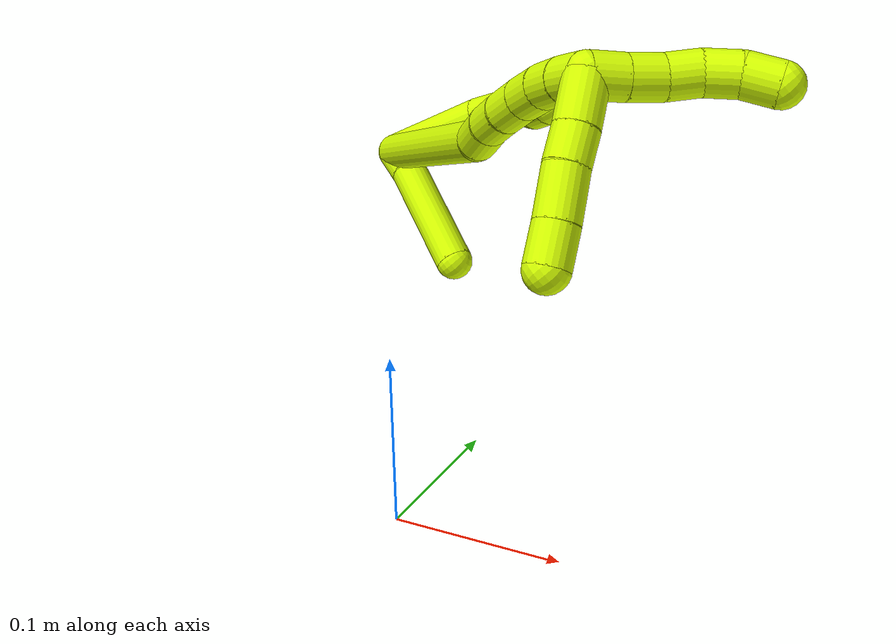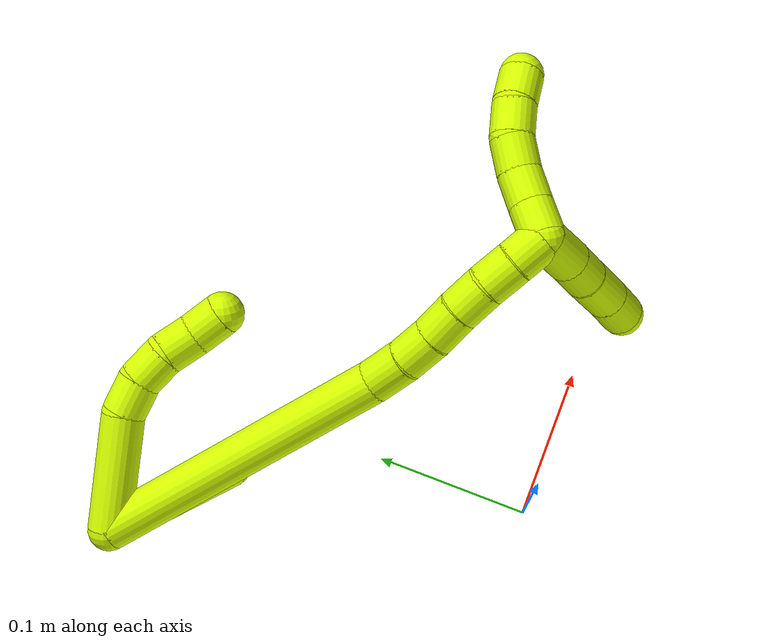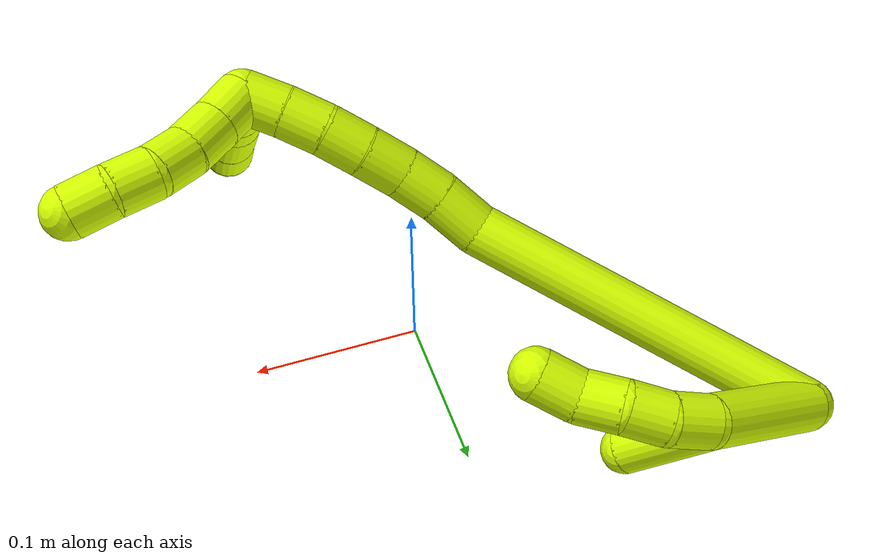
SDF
<sdf version="1.7">
 <world name="default">
  <model name="15">
   <static>0</static>
   <link name="15">
    <collision name="collision-cylinder-e_1_2_8">
     <pose>0.00991 0.004279 0.0323 -0.131706 0.295274 -0.019615</pose>
     <geometry><cylinder><radius>0.0125</radius><length>0.068112</length></cylinder></geometry>
     <surface>
      <friction><ode><mu>1.16</mu><mu2>1.16</mu2><slip1>0</slip1><slip2>0</slip2></ode></friction>
      <contact><ode><kp>1e+06</kp><kd>1</kd><max_vel>0</max_vel><min_depth>0.001</min_depth></ode></contact>
     </surface>
    </collision>
    <visual name="visual-cylinder-e_1_2_8">
     <pose>0.00991 0.004279 0.0323 -0.131706 0.295274 -0.019615</pose>
     <geometry><cylinder><radius>0.0125</radius><length>0.068112</length></cylinder></geometry>
     <material><ambient>0.835294 1 0 1</ambient></material>
    </visual>
    <collision name="collision-cylinder-e_2_8_9">
     <pose>0.025783 0.008605 0.073258 -0.005504 0.603078 -0.001712</pose>
     <geometry><cylinder><radius>0.0125</radius><length>0.021024</length></cylinder></geometry>
     <surface>
      <friction><ode><mu>1.16</mu><mu2>1.16</mu2><slip1>0</slip1><slip2>0</slip2></ode></friction>
      <contact><ode><kp>1e+06</kp><kd>1</kd><max_vel>0</max_vel><min_depth>0.001</min_depth></ode></contact>
     </surface>
    </collision>
    <visual name="visual-cylinder-e_2_8_9">
     <pose>0.025783 0.008605 0.073258 -0.005504 0.603078 -0.001712</pose>
     <geometry><cylinder><radius>0.0125</radius><length>0.021024</length></cylinder></geometry>
     <material><ambient>0.835294 1 0 1</ambient></material>
    </visual>
    <collision name="collision-cylinder-e_3_9_10">
     <pose>0.039272 0.006962 0.0885 0.251422 0.836184 0.112178</pose>
     <geometry><cylinder><radius>0.0125</radius><length>0.020287</length></cylinder></geometry>
     <surface>
      <friction><ode><mu>1.16</mu><mu2>1.16</mu2><slip1>0</slip1><slip2>0</slip2></ode></friction>
      <contact><ode><kp>1e+06</kp><kd>1</kd><max_vel>0</max_vel><min_depth>0.001</min_depth></ode></contact>
     </surface>
    </collision>
    <visual name="visual-cylinder-e_3_9_10">
     <pose>0.039272 0.006962 0.0885 0.251422 0.836184 0.112178</pose>
     <geometry><cylinder><radius>0.0125</radius><length>0.020287</length></cylinder></geometry>
     <material><ambient>0.835294 1 0 1</ambient></material>
    </visual>
    <collision name="collision-cylinder-e_4_10_11">
     <pose>0.055997 0.004238 0.099167 0.247602 1.14156 0.159456</pose>
     <geometry><cylinder><radius>0.0125</radius><length>0.020229</length></cylinder></geometry>
     <surface>
      <friction><ode><mu>1.16</mu><mu2>1.16</mu2><slip1>0</slip1><slip2>0</slip2></ode></friction>
      <contact><ode><kp>1e+06</kp><kd>1</kd><max_vel>0</max_vel><min_depth>0.001</min_depth></ode></contact>
     </surface>
    </collision>
    <visual name="visual-cylinder-e_4_10_11">
     <pose>0.055997 0.004238 0.099167 0.247602 1.14156 0.159456</pose>
     <geometry><cylinder><radius>0.0125</radius><length>0.020229</length></cylinder></geometry>
     <material><ambient>0.835294 1 0 1</ambient></material>
    </visual>
    <collision name="collision-cylinder-e_5_11_6">
     <pose>0.072797 -0.000391 0.108972 0.56112 0.84401 0.257327</pose>
     <geometry><cylinder><radius>0.0125</radius><length>0.020348</length></cylinder></geometry>
     <surface>
      <friction><ode><mu>1.16</mu><mu2>1.16</mu2><slip1>0</slip1><slip2>0</slip2></ode></friction>
      <contact><ode><kp>1e+06</kp><kd>1</kd><max_vel>0</max_vel><min_depth>0.001</min_depth></ode></contact>
     </surface>
    </collision>
    <visual name="visual-cylinder-e_5_11_6">
     <pose>0.072797 -0.000391 0.108972 0.56112 0.84401 0.257327</pose>
     <geometry><cylinder><radius>0.0125</radius><length>0.020348</length></cylinder></geometry>
     <material><ambient>0.835294 1 0 1</ambient></material>
    </visual>
    <collision name="collision-cylinder-e_1_2_12">
     <pose>0.010538 0.003083 0.000724 -1.34019 1.27884 -1.06498</pose>
     <geometry><cylinder><radius>0.0125</radius><length>0.022007</length></cylinder></geometry>
     <surface>
      <friction><ode><mu>1.16</mu><mu2>1.16</mu2><slip1>0</slip1><slip2>0</slip2></ode></friction>
      <contact><ode><kp>1e+06</kp><kd>1</kd><max_vel>0</max_vel><min_depth>0.001</min_depth></ode></contact>
     </surface>
    </collision>
    <visual name="visual-cylinder-e_1_2_12">
     <pose>0.010538 0.003083 0.000724 -1.34019 1.27884 -1.06498</pose>
     <geometry><cylinder><radius>0.0125</radius><length>0.022007</length></cylinder></geometry>
     <material><ambient>0.835294 1 0 1</ambient></material>
    </visual>
    <collision name="collision-cylinder-e_2_12_5">
     <pose>0.056608 0.021851 -0.002045 -1.78992 1.14607 -1.35529</pose>
     <geometry><cylinder><radius>0.0125</radius><length>0.077993</length></cylinder></geometry>
     <surface>
      <friction><ode><mu>1.16</mu><mu2>1.16</mu2><slip1>0</slip1><slip2>0</slip2></ode></friction>
      <contact><ode><kp>1e+06</kp><kd>1</kd><max_vel>0</max_vel><min_depth>0.001</min_depth></ode></contact>
     </surface>
    </collision>
    <visual name="visual-cylinder-e_2_12_5">
     <pose>0.056608 0.021851 -0.002045 -1.78992 1.14607 -1.35529</pose>
     <geometry><cylinder><radius>0.0125</radius><length>0.077993</length></cylinder></geometry>
     <material><ambient>0.835294 1 0 1</ambient></material>
    </visual>
    <collision name="collision-cylinder-e_1_2_13">
     <pose>0.07071 -0.031761 0.039495 0.67729 0.948915 0.357913</pose>
     <geometry><cylinder><radius>0.0125</radius><length>0.173995</length></cylinder></geometry>
     <surface>
      <friction><ode><mu>1.16</mu><mu2>1.16</mu2><slip1>0</slip1><slip2>0</slip2></ode></friction>
      <contact><ode><kp>1e+06</kp><kd>1</kd><max_vel>0</max_vel><min_depth>0.001</min_depth></ode></contact>
     </surface>
    </collision>
    <visual name="visual-cylinder-e_1_2_13">
     <pose>0.07071 -0.031761 0.039495 0.67729 0.948915 0.357913</pose>
     <geometry><cylinder><radius>0.0125</radius><length>0.173995</length></cylinder></geometry>
     <material><ambient>0.835294 1 0 1</ambient></material>
    </visual>
    <collision name="collision-cylinder-e_2_13_14">
     <pose>0.148509 -0.070007 0.086288 0.726372 0.628061 0.245617</pose>
     <geometry><cylinder><radius>0.0125</radius><length>0.024129</length></cylinder></geometry>
     <surface>
      <friction><ode><mu>1.16</mu><mu2>1.16</mu2><slip1>0</slip1><slip2>0</slip2></ode></friction>
      <contact><ode><kp>1e+06</kp><kd>1</kd><max_vel>0</max_vel><min_depth>0.001</min_depth></ode></contact>
     </surface>
    </collision>
    <visual name="visual-cylinder-e_2_13_14">
     <pose>0.148509 -0.070007 0.086288 0.726372 0.628061 0.245617</pose>
     <geometry><cylinder><radius>0.0125</radius><length>0.024129</length></cylinder></geometry>
     <material><ambient>0.835294 1 0 1</ambient></material>
    </visual>
    <collision name="collision-cylinder-e_3_14_15">
     <pose>0.162021 -0.081032 0.10049 0.581903 0.660761 0.204675</pose>
     <geometry><cylinder><radius>0.0125</radius><length>0.020932</length></cylinder></geometry>
     <surface>
      <friction><ode><mu>1.16</mu><mu2>1.16</mu2><slip1>0</slip1><slip2>0</slip2></ode></friction>
      <contact><ode><kp>1e+06</kp><kd>1</kd><max_vel>0</max_vel><min_depth>0.001</min_depth></ode></contact>
     </surface>
    </collision>
    <visual name="visual-cylinder-e_3_14_15">
     <pose>0.162021 -0.081032 0.10049 0.581903 0.660761 0.204675</pose>
     <geometry><cylinder><radius>0.0125</radius><length>0.020932</length></cylinder></geometry>
     <material><ambient>0.835294 1 0 1</ambient></material>
    </visual>
    <collision name="collision-cylinder-e_4_15_16">
     <pose>0.174543 -0.089379 0.114911 0.468614 0.626454 0.154312</pose>
     <geometry><cylinder><radius>0.0125</radius><length>0.020802</length></cylinder></geometry>
     <surface>
      <friction><ode><mu>1.16</mu><mu2>1.16</mu2><slip1>0</slip1><slip2>0</slip2></ode></friction>
      <contact><ode><kp>1e+06</kp><kd>1</kd><max_vel>0</max_vel><min_depth>0.001</min_depth></ode></contact>
     </surface>
    </collision>
    <visual name="visual-cylinder-e_4_15_16">
     <pose>0.174543 -0.089379 0.114911 0.468614 0.626454 0.154312</pose>
     <geometry><cylinder><radius>0.0125</radius><length>0.020802</length></cylinder></geometry>
     <material><ambient>0.835294 1 0 1</ambient></material>
    </visual>
    <collision name="collision-cylinder-e_5_16_17">
     <pose>0.187144 -0.096774 0.129198 0.487518 0.703784 0.18213</pose>
     <geometry><cylinder><radius>0.0125</radius><length>0.0201</length></cylinder></geometry>
     <surface>
      <friction><ode><mu>1.16</mu><mu2>1.16</mu2><slip1>0</slip1><slip2>0</slip2></ode></friction>
      <contact><ode><kp>1e+06</kp><kd>1</kd><max_vel>0</max_vel><min_depth>0.001</min_depth></ode></contact>
     </surface>
    </collision>
    <visual name="visual-cylinder-e_5_16_17">
     <pose>0.187144 -0.096774 0.129198 0.487518 0.703784 0.18213</pose>
     <geometry><cylinder><radius>0.0125</radius><length>0.0201</length></cylinder></geometry>
     <material><ambient>0.835294 1 0 1</ambient></material>
    </visual>
    <collision name="collision-cylinder-e_6_17_18">
     <pose>0.201079 -0.10333 0.14197 0.459007 0.837502 0.207212</pose>
     <geometry><cylinder><radius>0.0125</radius><length>0.020007</length></cylinder></geometry>
     <surface>
      <friction><ode><mu>1.16</mu><mu2>1.16</mu2><slip1>0</slip1><slip2>0</slip2></ode></friction>
      <contact><ode><kp>1e+06</kp><kd>1</kd><max_vel>0</max_vel><min_depth>0.001</min_depth></ode></contact>
     </surface>
    </collision>
    <visual name="visual-cylinder-e_6_17_18">
     <pose>0.201079 -0.10333 0.14197 0.459007 0.837502 0.207212</pose>
     <geometry><cylinder><radius>0.0125</radius><length>0.020007</length></cylinder></geometry>
     <material><ambient>0.835294 1 0 1</ambient></material>
    </visual>
    <collision name="collision-cylinder-e_7_18_1">
     <pose>0.216315 -0.108663 0.153791 0.386308 0.893028 0.186741</pose>
     <geometry><cylinder><radius>0.0125</radius><length>0.020035</length></cylinder></geometry>
     <surface>
      <friction><ode><mu>1.16</mu><mu2>1.16</mu2><slip1>0</slip1><slip2>0</slip2></ode></friction>
      <contact><ode><kp>1e+06</kp><kd>1</kd><max_vel>0</max_vel><min_depth>0.001</min_depth></ode></contact>
     </surface>
    </collision>
    <visual name="visual-cylinder-e_7_18_1">
     <pose>0.216315 -0.108663 0.153791 0.386308 0.893028 0.186741</pose>
     <geometry><cylinder><radius>0.0125</radius><length>0.020035</length></cylinder></geometry>
     <material><ambient>0.835294 1 0 1</ambient></material>
    </visual>
    <collision name="collision-cylinder-e_1_1_19">
     <pose>0.225251 -0.103676 0.16629 -0.833268 0.113531 -0.050286</pose>
     <geometry><cylinder><radius>0.0125</radius><length>0.02</length></cylinder></geometry>
     <surface>
      <friction><ode><mu>1.16</mu><mu2>1.16</mu2><slip1>0</slip1><slip2>0</slip2></ode></friction>
      <contact><ode><kp>1e+06</kp><kd>1</kd><max_vel>0</max_vel><min_depth>0.001</min_depth></ode></contact>
     </surface>
    </collision>
    <visual name="visual-cylinder-e_1_1_19">
     <pose>0.225251 -0.103676 0.16629 -0.833268 0.113531 -0.050286</pose>
     <geometry><cylinder><radius>0.0125</radius><length>0.02</length></cylinder></geometry>
     <material><ambient>0.835294 1 0 1</ambient></material>
    </visual>
    <collision name="collision-cylinder-e_2_19_20">
     <pose>0.227372 -0.089389 0.18011 -0.770756 0.099017 -0.040195</pose>
     <geometry><cylinder><radius>0.0125</radius><length>0.02</length></cylinder></geometry>
     <surface>
      <friction><ode><mu>1.16</mu><mu2>1.16</mu2><slip1>0</slip1><slip2>0</slip2></ode></friction>
      <contact><ode><kp>1e+06</kp><kd>1</kd><max_vel>0</max_vel><min_depth>0.001</min_depth></ode></contact>
     </surface>
    </collision>
    <visual name="visual-cylinder-e_2_19_20">
     <pose>0.227372 -0.089389 0.18011 -0.770756 0.099017 -0.040195</pose>
     <geometry><cylinder><radius>0.0125</radius><length>0.02</length></cylinder></geometry>
     <material><ambient>0.835294 1 0 1</ambient></material>
    </visual>
    <collision name="collision-cylinder-e_3_20_21">
     <pose>0.229784 -0.076788 0.195363 -0.609819 0.142782 -0.045006</pose>
     <geometry><cylinder><radius>0.0125</radius><length>0.02</length></cylinder></geometry>
     <surface>
      <friction><ode><mu>1.16</mu><mu2>1.16</mu2><slip1>0</slip1><slip2>0</slip2></ode></friction>
      <contact><ode><kp>1e+06</kp><kd>1</kd><max_vel>0</max_vel><min_depth>0.001</min_depth></ode></contact>
     </surface>
    </collision>
    <visual name="visual-cylinder-e_3_20_21">
     <pose>0.229784 -0.076788 0.195363 -0.609819 0.142782 -0.045006</pose>
     <geometry><cylinder><radius>0.0125</radius><length>0.02</length></cylinder></geometry>
     <material><ambient>0.835294 1 0 1</ambient></material>
    </visual>
    <collision name="collision-cylinder-e_4_21_22">
     <pose>0.235568 -0.066018 0.210891 -0.602704 0.451279 -0.142454</pose>
     <geometry><cylinder><radius>0.0125</radius><length>0.02</length></cylinder></geometry>
     <surface>
      <friction><ode><mu>1.16</mu><mu2>1.16</mu2><slip1>0</slip1><slip2>0</slip2></ode></friction>
      <contact><ode><kp>1e+06</kp><kd>1</kd><max_vel>0</max_vel><min_depth>0.001</min_depth></ode></contact>
     </surface>
    </collision>
    <visual name="visual-cylinder-e_4_21_22">
     <pose>0.235568 -0.066018 0.210891 -0.602704 0.451279 -0.142454</pose>
     <geometry><cylinder><radius>0.0125</radius><length>0.02</length></cylinder></geometry>
     <material><ambient>0.835294 1 0 1</ambient></material>
    </visual>
    <collision name="collision-cylinder-e_5_22_4">
     <pose>0.245918 -0.055418 0.224127 -0.756729 0.642043 -0.262844</pose>
     <geometry><cylinder><radius>0.0125</radius><length>0.02</length></cylinder></geometry>
     <surface>
      <friction><ode><mu>1.16</mu><mu2>1.16</mu2><slip1>0</slip1><slip2>0</slip2></ode></friction>
      <contact><ode><kp>1e+06</kp><kd>1</kd><max_vel>0</max_vel><min_depth>0.001</min_depth></ode></contact>
     </surface>
    </collision>
    <visual name="visual-cylinder-e_5_22_4">
     <pose>0.245918 -0.055418 0.224127 -0.756729 0.642043 -0.262844</pose>
     <geometry><cylinder><radius>0.0125</radius><length>0.02</length></cylinder></geometry>
     <material><ambient>0.835294 1 0 1</ambient></material>
    </visual>
    <collision name="collision-cylinder-e_1_1_23">
     <pose>0.234005 -0.108086 0.149956 -2.84564 0.775147 -2.44136</pose>
     <geometry><cylinder><radius>0.0125</radius><length>0.028256</length></cylinder></geometry>
     <surface>
      <friction><ode><mu>1.16</mu><mu2>1.16</mu2><slip1>0</slip1><slip2>0</slip2></ode></friction>
      <contact><ode><kp>1e+06</kp><kd>1</kd><max_vel>0</max_vel><min_depth>0.001</min_depth></ode></contact>
     </surface>
    </collision>
    <visual name="visual-cylinder-e_1_1_23">
     <pose>0.234005 -0.108086 0.149956 -2.84564 0.775147 -2.44136</pose>
     <geometry><cylinder><radius>0.0125</radius><length>0.028256</length></cylinder></geometry>
     <material><ambient>0.835294 1 0 1</ambient></material>
    </visual>
    <collision name="collision-cylinder-e_2_23_24">
     <pose>0.250653 -0.103327 0.133028 -2.89698 0.733743 -2.5224</pose>
     <geometry><cylinder><radius>0.0125</radius><length>0.020192</length></cylinder></geometry>
     <surface>
      <friction><ode><mu>1.16</mu><mu2>1.16</mu2><slip1>0</slip1><slip2>0</slip2></ode></friction>
      <contact><ode><kp>1e+06</kp><kd>1</kd><max_vel>0</max_vel><min_depth>0.001</min_depth></ode></contact>
     </surface>
    </collision>
    <visual name="visual-cylinder-e_2_23_24">
     <pose>0.250653 -0.103327 0.133028 -2.89698 0.733743 -2.5224</pose>
     <geometry><cylinder><radius>0.0125</radius><length>0.020192</length></cylinder></geometry>
     <material><ambient>0.835294 1 0 1</ambient></material>
    </visual>
    <collision name="collision-cylinder-e_3_24_25">
     <pose>0.267257 -0.097794 0.115927 -2.77994 0.752826 -2.27512</pose>
     <geometry><cylinder><radius>0.0125</radius><length>0.028792</length></cylinder></geometry>
     <surface>
      <friction><ode><mu>1.16</mu><mu2>1.16</mu2><slip1>0</slip1><slip2>0</slip2></ode></friction>
      <contact><ode><kp>1e+06</kp><kd>1</kd><max_vel>0</max_vel><min_depth>0.001</min_depth></ode></contact>
     </surface>
    </collision>
    <visual name="visual-cylinder-e_3_24_25">
     <pose>0.267257 -0.097794 0.115927 -2.77994 0.752826 -2.27512</pose>
     <geometry><cylinder><radius>0.0125</radius><length>0.028792</length></cylinder></geometry>
     <material><ambient>0.835294 1 0 1</ambient></material>
    </visual>
    <collision name="collision-cylinder-e_4_25_3">
     <pose>0.284598 -0.091322 0.097997 -2.81395 0.719455 -2.31337</pose>
     <geometry><cylinder><radius>0.0125</radius><length>0.02276</length></cylinder></geometry>
     <surface>
      <friction><ode><mu>1.16</mu><mu2>1.16</mu2><slip1>0</slip1><slip2>0</slip2></ode></friction>
      <contact><ode><kp>1e+06</kp><kd>1</kd><max_vel>0</max_vel><min_depth>0.001</min_depth></ode></contact>
     </surface>
    </collision>
    <visual name="visual-cylinder-e_4_25_3">
     <pose>0.284598 -0.091322 0.097997 -2.81395 0.719455 -2.31337</pose>
     <geometry><cylinder><radius>0.0125</radius><length>0.02276</length></cylinder></geometry>
     <material><ambient>0.835294 1 0 1</ambient></material>
    </visual>
    <collision name="collision-sphere-3">
     <pose>0.292097 -0.088568 0.089892 0 -0 0</pose>
     <geometry><sphere><radius>0.0125</radius></sphere></geometry>
     <surface>
      <friction><ode><mu>1.16</mu><mu2>1.16</mu2><slip1>0</slip1><slip2>0</slip2></ode></friction>
      <contact><ode><kp>1e+06</kp><kd>1</kd><max_vel>0</max_vel><min_depth>0.001</min_depth></ode></contact>
     </surface>
    </collision>
    <visual name="visual-sphere-3">
     <pose>0.292097 -0.088568 0.089892 0 -0 0</pose>
     <geometry><sphere><radius>0.0125</radius></sphere></geometry>
     <material><ambient>0.835294 1 0 1</ambient></material>
    </visual>
    <collision name="collision-sphere-25">
     <pose>0.277099 -0.094077 0.106101 0 -0 0</pose>
     <geometry><sphere><radius>0.0125</radius></sphere></geometry>
     <surface>
      <friction><ode><mu>1.16</mu><mu2>1.16</mu2><slip1>0</slip1><slip2>0</slip2></ode></friction>
      <contact><ode><kp>1e+06</kp><kd>1</kd><max_vel>0</max_vel><min_depth>0.001</min_depth></ode></contact>
     </surface>
    </collision>
    <visual name="visual-sphere-25">
     <pose>0.277099 -0.094077 0.106101 0 -0 0</pose>
     <geometry><sphere><radius>0.0125</radius></sphere></geometry>
     <material><ambient>0.835294 1 0 1</ambient></material>
    </visual>
    <collision name="collision-sphere-24">
     <pose>0.257414 -0.101511 0.125753 0 -0 0</pose>
     <geometry><sphere><radius>0.0125</radius></sphere></geometry>
     <surface>
      <friction><ode><mu>1.16</mu><mu2>1.16</mu2><slip1>0</slip1><slip2>0</slip2></ode></friction>
      <contact><ode><kp>1e+06</kp><kd>1</kd><max_vel>0</max_vel><min_depth>0.001</min_depth></ode></contact>
     </surface>
    </collision>
    <visual name="visual-sphere-24">
     <pose>0.257414 -0.101511 0.125753 0 -0 0</pose>
     <geometry><sphere><radius>0.0125</radius></sphere></geometry>
     <material><ambient>0.835294 1 0 1</ambient></material>
    </visual>
    <collision name="collision-sphere-23">
     <pose>0.243892 -0.105143 0.140303 0 -0 0</pose>
     <geometry><sphere><radius>0.0125</radius></sphere></geometry>
     <surface>
      <friction><ode><mu>1.16</mu><mu2>1.16</mu2><slip1>0</slip1><slip2>0</slip2></ode></friction>
      <contact><ode><kp>1e+06</kp><kd>1</kd><max_vel>0</max_vel><min_depth>0.001</min_depth></ode></contact>
     </surface>
    </collision>
    <visual name="visual-sphere-23">
     <pose>0.243892 -0.105143 0.140303 0 -0 0</pose>
     <geometry><sphere><radius>0.0125</radius></sphere></geometry>
     <material><ambient>0.835294 1 0 1</ambient></material>
    </visual>
    <collision name="collision-sphere-4">
     <pose>0.251906 -0.04992 0.22995 0 -0 0</pose>
     <geometry><sphere><radius>0.0125</radius></sphere></geometry>
     <surface>
      <friction><ode><mu>1.16</mu><mu2>1.16</mu2><slip1>0</slip1><slip2>0</slip2></ode></friction>
      <contact><ode><kp>1e+06</kp><kd>1</kd><max_vel>0</max_vel><min_depth>0.001</min_depth></ode></contact>
     </surface>
    </collision>
    <visual name="visual-sphere-4">
     <pose>0.251906 -0.04992 0.22995 0 -0 0</pose>
     <geometry><sphere><radius>0.0125</radius></sphere></geometry>
     <material><ambient>0.835294 1 0 1</ambient></material>
    </visual>
    <collision name="collision-sphere-22">
     <pose>0.239929 -0.060916 0.218304 0 -0 0</pose>
     <geometry><sphere><radius>0.0125</radius></sphere></geometry>
     <surface>
      <friction><ode><mu>1.16</mu><mu2>1.16</mu2><slip1>0</slip1><slip2>0</slip2></ode></friction>
      <contact><ode><kp>1e+06</kp><kd>1</kd><max_vel>0</max_vel><min_depth>0.001</min_depth></ode></contact>
     </surface>
    </collision>
    <visual name="visual-sphere-22">
     <pose>0.239929 -0.060916 0.218304 0 -0 0</pose>
     <geometry><sphere><radius>0.0125</radius></sphere></geometry>
     <material><ambient>0.835294 1 0 1</ambient></material>
    </visual>
    <collision name="collision-sphere-21">
     <pose>0.231207 -0.071119 0.203477 0 -0 0</pose>
     <geometry><sphere><radius>0.0125</radius></sphere></geometry>
     <surface>
      <friction><ode><mu>1.16</mu><mu2>1.16</mu2><slip1>0</slip1><slip2>0</slip2></ode></friction>
      <contact><ode><kp>1e+06</kp><kd>1</kd><max_vel>0</max_vel><min_depth>0.001</min_depth></ode></contact>
     </surface>
    </collision>
    <visual name="visual-sphere-21">
     <pose>0.231207 -0.071119 0.203477 0 -0 0</pose>
     <geometry><sphere><radius>0.0125</radius></sphere></geometry>
     <material><ambient>0.835294 1 0 1</ambient></material>
    </visual>
    <collision name="collision-sphere-20">
     <pose>0.228361 -0.082457 0.187249 0 -0 0</pose>
     <geometry><sphere><radius>0.0125</radius></sphere></geometry>
     <surface>
      <friction><ode><mu>1.16</mu><mu2>1.16</mu2><slip1>0</slip1><slip2>0</slip2></ode></friction>
      <contact><ode><kp>1e+06</kp><kd>1</kd><max_vel>0</max_vel><min_depth>0.001</min_depth></ode></contact>
     </surface>
    </collision>
    <visual name="visual-sphere-20">
     <pose>0.228361 -0.082457 0.187249 0 -0 0</pose>
     <geometry><sphere><radius>0.0125</radius></sphere></geometry>
     <material><ambient>0.835294 1 0 1</ambient></material>
    </visual>
    <collision name="collision-sphere-6">
     <pose>0.0804 -0.003988 0.114695 0 -0 0</pose>
     <geometry><sphere><radius>0.0125</radius></sphere></geometry>
     <surface>
      <friction><ode><mu>1.16</mu><mu2>1.16</mu2><slip1>0</slip1><slip2>0</slip2></ode></friction>
      <contact><ode><kp>1e+06</kp><kd>1</kd><max_vel>0</max_vel><min_depth>0.001</min_depth></ode></contact>
     </surface>
    </collision>
    <visual name="visual-sphere-6">
     <pose>0.0804 -0.003988 0.114695 0 -0 0</pose>
     <geometry><sphere><radius>0.0125</radius></sphere></geometry>
     <material><ambient>0.835294 1 0 1</ambient></material>
    </visual>
    <collision name="collision-sphere-11">
     <pose>0.065193 0.003207 0.103248 0 -0 0</pose>
     <geometry><sphere><radius>0.0125</radius></sphere></geometry>
     <surface>
      <friction><ode><mu>1.16</mu><mu2>1.16</mu2><slip1>0</slip1><slip2>0</slip2></ode></friction>
      <contact><ode><kp>1e+06</kp><kd>1</kd><max_vel>0</max_vel><min_depth>0.001</min_depth></ode></contact>
     </surface>
    </collision>
    <visual name="visual-sphere-11">
     <pose>0.065193 0.003207 0.103248 0 -0 0</pose>
     <geometry><sphere><radius>0.0125</radius></sphere></geometry>
     <material><ambient>0.835294 1 0 1</ambient></material>
    </visual>
    <collision name="collision-sphere-10">
     <pose>0.0468 0.00527 0.095086 0 -0 0</pose>
     <geometry><sphere><radius>0.0125</radius></sphere></geometry>
     <surface>
      <friction><ode><mu>1.16</mu><mu2>1.16</mu2><slip1>0</slip1><slip2>0</slip2></ode></friction>
      <contact><ode><kp>1e+06</kp><kd>1</kd><max_vel>0</max_vel><min_depth>0.001</min_depth></ode></contact>
     </surface>
    </collision>
    <visual name="visual-sphere-10">
     <pose>0.0468 0.00527 0.095086 0 -0 0</pose>
     <geometry><sphere><radius>0.0125</radius></sphere></geometry>
     <material><ambient>0.835294 1 0 1</ambient></material>
    </visual>
    <collision name="collision-sphere-9">
     <pose>0.031745 0.008653 0.081915 0 -0 0</pose>
     <geometry><sphere><radius>0.0125</radius></sphere></geometry>
     <surface>
      <friction><ode><mu>1.16</mu><mu2>1.16</mu2><slip1>0</slip1><slip2>0</slip2></ode></friction>
      <contact><ode><kp>1e+06</kp><kd>1</kd><max_vel>0</max_vel><min_depth>0.001</min_depth></ode></contact>
     </surface>
    </collision>
    <visual name="visual-sphere-9">
     <pose>0.031745 0.008653 0.081915 0 -0 0</pose>
     <geometry><sphere><radius>0.0125</radius></sphere></geometry>
     <material><ambient>0.835294 1 0 1</ambient></material>
    </visual>
    <collision name="collision-sphere-2">
     <geometry><sphere><radius>0.0125</radius></sphere></geometry>
     <surface>
      <friction><ode><mu>1.16</mu><mu2>1.16</mu2><slip1>0</slip1><slip2>0</slip2></ode></friction>
      <contact><ode><kp>1e+06</kp><kd>1</kd><max_vel>0</max_vel><min_depth>0.001</min_depth></ode></contact>
     </surface>
    </collision>
    <visual name="visual-sphere-2">
     <geometry><sphere><radius>0.0125</radius></sphere></geometry>
     <material><ambient>0.835294 1 0 1</ambient></material>
    </visual>
    <collision name="collision-sphere-19">
     <pose>0.226384 -0.096322 0.172972 0 -0 0</pose>
     <geometry><sphere><radius>0.0125</radius></sphere></geometry>
     <surface>
      <friction><ode><mu>1.16</mu><mu2>1.16</mu2><slip1>0</slip1><slip2>0</slip2></ode></friction>
      <contact><ode><kp>1e+06</kp><kd>1</kd><max_vel>0</max_vel><min_depth>0.001</min_depth></ode></contact>
     </surface>
    </collision>
    <visual name="visual-sphere-19">
     <pose>0.226384 -0.096322 0.172972 0 -0 0</pose>
     <geometry><sphere><radius>0.0125</radius></sphere></geometry>
     <material><ambient>0.835294 1 0 1</ambient></material>
    </visual>
    <collision name="collision-sphere-8">
     <pose>0.019821 0.008558 0.0646 0 -0 0</pose>
     <geometry><sphere><radius>0.0125</radius></sphere></geometry>
     <surface>
      <friction><ode><mu>1.16</mu><mu2>1.16</mu2><slip1>0</slip1><slip2>0</slip2></ode></friction>
      <contact><ode><kp>1e+06</kp><kd>1</kd><max_vel>0</max_vel><min_depth>0.001</min_depth></ode></contact>
     </surface>
    </collision>
    <visual name="visual-sphere-8">
     <pose>0.019821 0.008558 0.0646 0 -0 0</pose>
     <geometry><sphere><radius>0.0125</radius></sphere></geometry>
     <material><ambient>0.835294 1 0 1</ambient></material>
    </visual>
    <collision name="collision-sphere-12">
     <pose>0.021076 0.006167 0.001448 0 -0 0</pose>
     <geometry><sphere><radius>0.0125</radius></sphere></geometry>
     <surface>
      <friction><ode><mu>1.16</mu><mu2>1.16</mu2><slip1>0</slip1><slip2>0</slip2></ode></friction>
      <contact><ode><kp>1e+06</kp><kd>1</kd><max_vel>0</max_vel><min_depth>0.001</min_depth></ode></contact>
     </surface>
    </collision>
    <visual name="visual-sphere-12">
     <pose>0.021076 0.006167 0.001448 0 -0 0</pose>
     <geometry><sphere><radius>0.0125</radius></sphere></geometry>
     <material><ambient>0.835294 1 0 1</ambient></material>
    </visual>
    <collision name="collision-sphere-5">
     <pose>0.092139 0.037536 -0.005538 0 -0 0</pose>
     <geometry><sphere><radius>0.0125</radius></sphere></geometry>
     <surface>
      <friction><ode><mu>1.16</mu><mu2>1.16</mu2><slip1>0</slip1><slip2>0</slip2></ode></friction>
      <contact><ode><kp>1e+06</kp><kd>1</kd><max_vel>0</max_vel><min_depth>0.001</min_depth></ode></contact>
     </surface>
    </collision>
    <visual name="visual-sphere-5">
     <pose>0.092139 0.037536 -0.005538 0 -0 0</pose>
     <geometry><sphere><radius>0.0125</radius></sphere></geometry>
     <material><ambient>0.835294 1 0 1</ambient></material>
    </visual>
    <collision name="collision-sphere-13">
     <pose>0.14142 -0.063523 0.07899 0 -0 0</pose>
     <geometry><sphere><radius>0.0125</radius></sphere></geometry>
     <surface>
      <friction><ode><mu>1.16</mu><mu2>1.16</mu2><slip1>0</slip1><slip2>0</slip2></ode></friction>
      <contact><ode><kp>1e+06</kp><kd>1</kd><max_vel>0</max_vel><min_depth>0.001</min_depth></ode></contact>
     </surface>
    </collision>
    <visual name="visual-sphere-13">
     <pose>0.14142 -0.063523 0.07899 0 -0 0</pose>
     <geometry><sphere><radius>0.0125</radius></sphere></geometry>
     <material><ambient>0.835294 1 0 1</ambient></material>
    </visual>
    <collision name="collision-sphere-14">
     <pose>0.155598 -0.07649 0.093586 0 -0 0</pose>
     <geometry><sphere><radius>0.0125</radius></sphere></geometry>
     <surface>
      <friction><ode><mu>1.16</mu><mu2>1.16</mu2><slip1>0</slip1><slip2>0</slip2></ode></friction>
      <contact><ode><kp>1e+06</kp><kd>1</kd><max_vel>0</max_vel><min_depth>0.001</min_depth></ode></contact>
     </surface>
    </collision>
    <visual name="visual-sphere-14">
     <pose>0.155598 -0.07649 0.093586 0 -0 0</pose>
     <geometry><sphere><radius>0.0125</radius></sphere></geometry>
     <material><ambient>0.835294 1 0 1</ambient></material>
    </visual>
    <collision name="collision-sphere-15">
     <pose>0.168445 -0.085574 0.107393 0 -0 0</pose>
     <geometry><sphere><radius>0.0125</radius></sphere></geometry>
     <surface>
      <friction><ode><mu>1.16</mu><mu2>1.16</mu2><slip1>0</slip1><slip2>0</slip2></ode></friction>
      <contact><ode><kp>1e+06</kp><kd>1</kd><max_vel>0</max_vel><min_depth>0.001</min_depth></ode></contact>
     </surface>
    </collision>
    <visual name="visual-sphere-15">
     <pose>0.168445 -0.085574 0.107393 0 -0 0</pose>
     <geometry><sphere><radius>0.0125</radius></sphere></geometry>
     <material><ambient>0.835294 1 0 1</ambient></material>
    </visual>
    <collision name="collision-sphere-16">
     <pose>0.180641 -0.093185 0.122428 0 -0 0</pose>
     <geometry><sphere><radius>0.0125</radius></sphere></geometry>
     <surface>
      <friction><ode><mu>1.16</mu><mu2>1.16</mu2><slip1>0</slip1><slip2>0</slip2></ode></friction>
      <contact><ode><kp>1e+06</kp><kd>1</kd><max_vel>0</max_vel><min_depth>0.001</min_depth></ode></contact>
     </surface>
    </collision>
    <visual name="visual-sphere-16">
     <pose>0.180641 -0.093185 0.122428 0 -0 0</pose>
     <geometry><sphere><radius>0.0125</radius></sphere></geometry>
     <material><ambient>0.835294 1 0 1</ambient></material>
    </visual>
    <collision name="collision-sphere-17">
     <pose>0.193647 -0.100363 0.135967 0 -0 0</pose>
     <geometry><sphere><radius>0.0125</radius></sphere></geometry>
     <surface>
      <friction><ode><mu>1.16</mu><mu2>1.16</mu2><slip1>0</slip1><slip2>0</slip2></ode></friction>
      <contact><ode><kp>1e+06</kp><kd>1</kd><max_vel>0</max_vel><min_depth>0.001</min_depth></ode></contact>
     </surface>
    </collision>
    <visual name="visual-sphere-17">
     <pose>0.193647 -0.100363 0.135967 0 -0 0</pose>
     <geometry><sphere><radius>0.0125</radius></sphere></geometry>
     <material><ambient>0.835294 1 0 1</ambient></material>
    </visual>
    <collision name="collision-sphere-18">
     <pose>0.208512 -0.106296 0.147972 0 -0 0</pose>
     <geometry><sphere><radius>0.0125</radius></sphere></geometry>
     <surface>
      <friction><ode><mu>1.16</mu><mu2>1.16</mu2><slip1>0</slip1><slip2>0</slip2></ode></friction>
      <contact><ode><kp>1e+06</kp><kd>1</kd><max_vel>0</max_vel><min_depth>0.001</min_depth></ode></contact>
     </surface>
    </collision>
    <visual name="visual-sphere-18">
     <pose>0.208512 -0.106296 0.147972 0 -0 0</pose>
     <geometry><sphere><radius>0.0125</radius></sphere></geometry>
     <material><ambient>0.835294 1 0 1</ambient></material>
    </visual>
    <collision name="collision-sphere-1">
     <pose>0.224118 -0.111029 0.159609 0 -0 0</pose>
     <geometry><sphere><radius>0.0125</radius></sphere></geometry>
     <surface>
      <friction><ode><mu>1.16</mu><mu2>1.16</mu2><slip1>0</slip1><slip2>0</slip2></ode></friction>
      <contact><ode><kp>1e+06</kp><kd>1</kd><max_vel>0</max_vel><min_depth>0.001</min_depth></ode></contact>
     </surface>
    </collision>
    <visual name="visual-sphere-1">
     <pose>0.224118 -0.111029 0.159609 0 -0 0</pose>
     <geometry><sphere><radius>0.0125</radius></sphere></geometry>
     <material><ambient>0.835294 1 0 1</ambient></material>
    </visual>
    <inertial>
     <pose>0.124567 -0.043143 0.084812 0 -0 0</pose>
     <mass>0.75</mass>
     <inertia>
      <ixx>0.000395</ixx>
      <ixy>0</ixy>
      <ixz>0</ixz>
      <iyy>0.000568</iyy>
      <iyz>0</iyz>
      <izz>-0.00027</izz>
     </inertia>
    </inertial>
   </link>
   <pose>-0.123337 0.220437 0.146816 -0.814421 0.333489 -0.825</pose>
  </model>
 </world>
</sdf>
